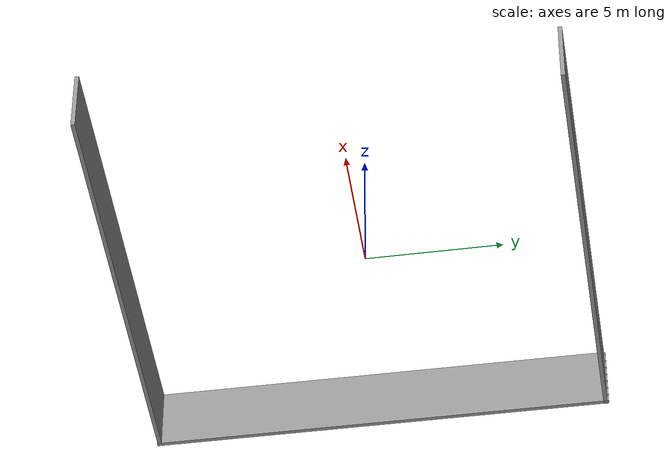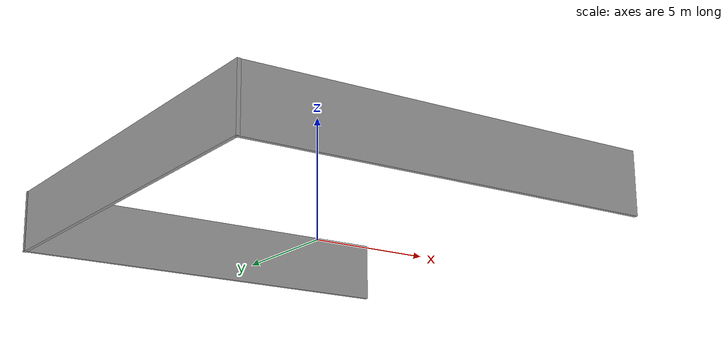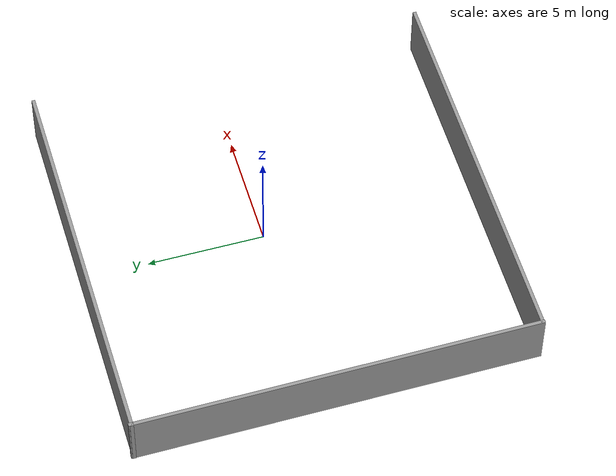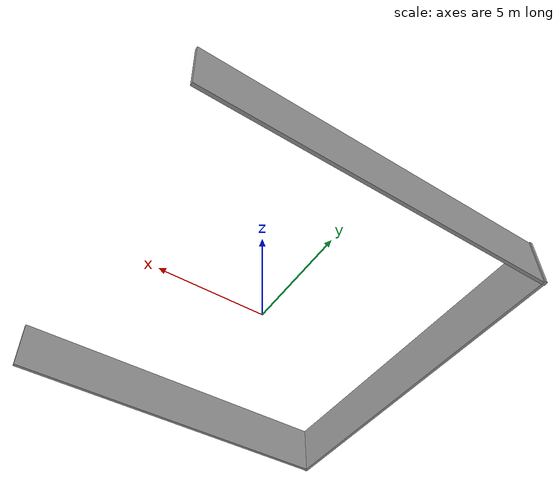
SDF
<?xml version='1.0'?>
<sdf version='1.6'>
  <model name='building_closed'>
    <pose frame=''>-0.493677 -0.605251 0 0 -0 0</pose>
    <link name='Wall_11'>
      <collision name='Wall_11_Collision'>
        <geometry>
          <box>
            <size>16.75 0.15 2.5</size>
          </box>
        </geometry>
        <pose frame=''>0 0 1.25 0 -0 0</pose>
      </collision>
      <visual name='Wall_11_Visual'>
        <pose frame=''>0 0 1.25 0 -0 0</pose>
        <geometry>
          <box>
            <size>16.75 0.15 2.5</size>
          </box>
        </geometry>
        <material>
          <script>
            <uri>file://media/materials/scripts/gazebo.material</uri>
            <name>Gazebo/Grey</name>
          </script>
          <ambient>1 1 1 1</ambient>
        </material>
        <meta>
          <layer>0</layer>
        </meta>
      </visual>
      <pose frame=''>-0.039572 8.49908 0 0 -0 0</pose>
    </link>
    <link name='Wall_7'>
      <collision name='Wall_7_Collision'>
        <geometry>
          <box>
            <size>16.75 0.15 2.5</size>
          </box>
        </geometry>
        <pose frame=''>0 0 1.25 0 -0 0</pose>
      </collision>
      <visual name='Wall_7_Visual'>
        <pose frame=''>0 0 1.25 0 -0 0</pose>
        <geometry>
          <box>
            <size>16.75 0.15 2.5</size>
          </box>
        </geometry>
        <material>
          <script>
            <uri>file://media/materials/scripts/gazebo.material</uri>
            <name>Gazebo/Grey</name>
          </script>
          <ambient>1 1 1 1</ambient>
        </material>
        <meta>
          <layer>0</layer>
        </meta>
      </visual>
      <pose frame=''>0.039572 -8.52875 0 0 -0 0</pose>
    </link>
    <link name='Wall_9'>
      <collision name='Wall_9_Collision'>
        <geometry>
          <box>
            <size>17.25 0.15 2.5</size>
          </box>
        </geometry>
        <pose frame=''>0 0 1.25 0 -0 0</pose>
      </collision>
      <visual name='Wall_9_Visual'>
        <pose frame=''>0 0 1.25 0 -0 0</pose>
        <geometry>
          <box>
            <size>17.25 0.15 2.5</size>
          </box>
        </geometry>
        <material>
          <script>
            <uri>file://media/materials/scripts/gazebo.material</uri>
            <name>Gazebo/Grey</name>
          </script>
          <ambient>1 1 1 1</ambient>
        </material>
        <meta>
          <layer>0</layer>
        </meta>
      </visual>
      <pose frame=''>-8.32012 -0 0 0 -0 1.5708</pose>
    </link>
    <static>1</static>
  </model>
</sdf>
